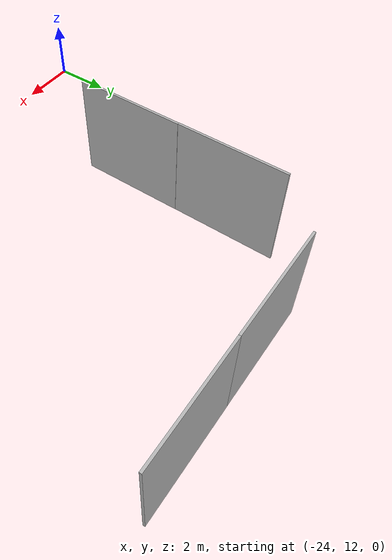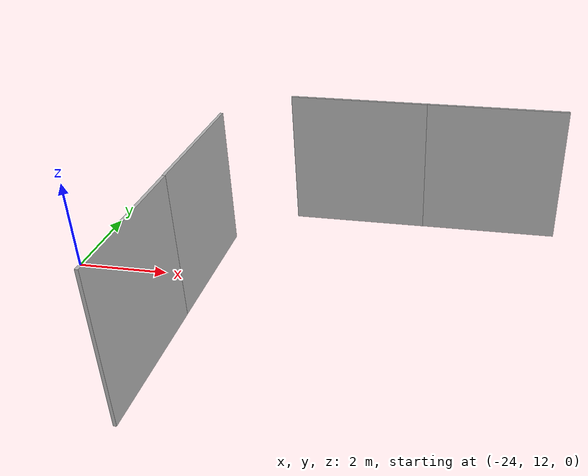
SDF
<?xml version='1.0'?>
<sdf version='1.6'>

  <model name='vampire'>
    <link name='dragur'>
      <pose frame=''>0 0 0 0 -0 0</pose>
      <visual name='visual'>
        <pose frame=''>-20 24.49 -3 0 -1.57 1.57</pose>
        <geometry>
          <box>
            <size>5 5 0.1</size>
          </box>
        </geometry>
        <material>
          <script>
            <uri>model://2019/vampire_logo/materials/scripts</uri>
            <uri>model://2019/vampire_logo/materials/textures</uri>
            <name>dragur</name>
          </script>
        </material>
      </visual>
    </link>
    <static>1</static>

    <link name='aswang'>
      <pose frame=''>-0 0 0 0 -0 0</pose>
      <visual name='visual'>
        <pose frame=''>-24.49 20 -3 0 -1.57 3.14</pose>
        <geometry>
          <box>
            <size>5 5 0.1</size>
          </box>
        </geometry>
        <material>
          <script>
            <uri>model://2019/vampire_logo/materials/scripts</uri>
            <uri>model://2019/vampire_logo/materials/textures</uri>
            <name>aswang</name>
          </script>
        </material>
      </visual>
    </link>

    <link name='vetalas'>
      <pose frame=''>0 0 0 0 -0 0</pose>
      <visual name='visual'>
        <pose frame=''>-15 24.49 -3 0 -1.57 1.57</pose>
        <geometry>
          <box>
            <size>5 5 0.1</size>
          </box>
        </geometry>
        <material>
          <script>
            <uri>model://2019/vampire_logo/materials/scripts</uri>
            <uri>model://2019/vampire_logo/materials/textures</uri>
            <name>vetalas</name>
          </script>
        </material>
      </visual>
    </link>

    <link name='jiangshi'>
      <pose frame=''>0 0 0 0 -0 0</pose>
      <visual name='visual'>
        <pose frame=''>-24.49 15 -3 3.14 -1.57 0</pose>
        <geometry>
          <box>
            <size>5 5 0.1</size>
          </box>
        </geometry>
        <material>
          <script>
            <uri>model://2019/vampire_logo/materials/scripts</uri>
            <uri>model://2019/vampire_logo/materials/textures</uri>
            <name>jiangshi</name>
          </script>
        </material>
      </visual>
    </link>
    <static>1</static>
  </model>
</sdf>
